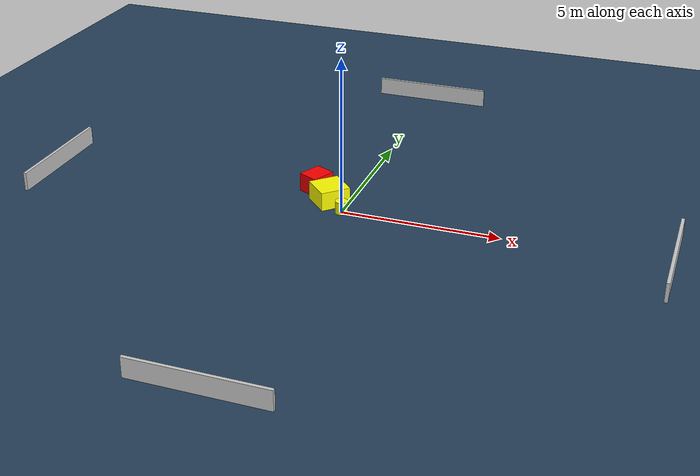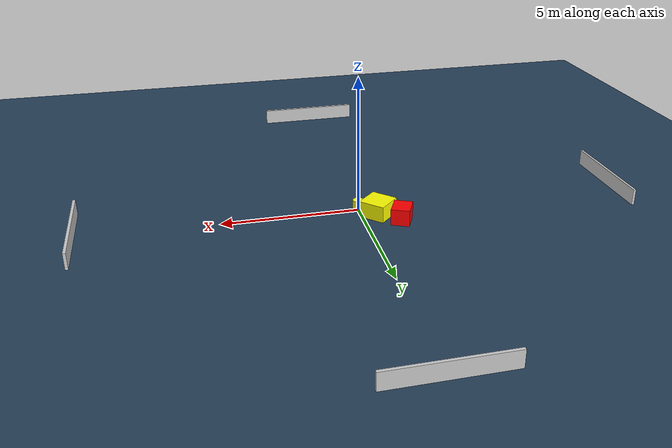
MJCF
<?xml version="1.0" ?>
<mujoco model="generated_environment">
  <option timestep="0.01" integrator="RK4" cone="elliptic"/>
  <default>
    <geom density="1"/>
  </default>
  <asset>
    <texture builtin="gradient" height="3072" name="skybox" rgb1="0.3 0.5 0.7" rgb2="0 0 0" type="skybox" width="512"/>
    <texture builtin="checker" height="300" name="groundplane" rgb1="0.2 0.3 0.4" rgb2="0.1 0.2 0.3" type="2d" width="300"/>
    <material name="groundplane" reflectance="0.2" texrepeat="5 5" texture="groundplane"/>
  </asset>
  <worldbody>
    <light dir="0 0 -1" directional="true" pos="0 0 1.5"/>
    <geom condim="3" friction="0.5 0.005 0.001" material="groundplane" name="floor" pos="0 0 0" size="0 0 0.05" type="plane"/>
    <body name="walls">
      <geom name="wall_1" condim="4" pos="-10.0 0.0 0.3" rgba="0.800000011920929 0.800000011920929 0.800000011920929 1.0" size="0.05 2.0 0.3" type="box"/>
      <geom name="wall_2" condim="4" pos="10.0 0.0 0.3" rgba="0.800000011920929 0.800000011920929 0.800000011920929 1.0" size="0.05 2.0 0.3" type="box"/>
      <geom name="wall_3" condim="4" pos="0.0 -10.0 0.3" rgba="0.800000011920929 0.800000011920929 0.800000011920929 1.0" size="2.0 0.05 0.3" type="box"/>
      <geom name="wall_4" condim="4" pos="0.0 10.0 0.3" rgba="0.800000011920929 0.800000011920929 0.800000011920929 1.0" size="2.0 0.05 0.3" type="box"/>
    </body>
    <body name="robot">
      <joint name="joint_x" type="slide" pos="0 0 0" axis="1 0 0"/>
      <joint name="joint_y" type="slide" pos="0 0 0" axis="0 1 0"/>
      <geom name="robot" type="cylinder" pos="0.0 0.0 0.2" size="0.2 0.2 0.0" mass="5.0" friction="1.0 0.005 0.0001" condim="4" rgba="1.0 1.0 0.0 1.0"/>
    </body>
    <body name="obstacle_1_movable">
      <geom name="obstacle_1_movable" condim="4" pos="-0.5955669709957887 0.5564826287982841 0.3" euler="0 0 44.56029992350678" friction="0.0 0.005 0.001" rgba="1.0 1.0 0.0 1.0" size="0.4857656111346369 0.49006270741028907 0.3" type="box" mass="0.1"/>
      <joint type="free"/>
    </body>
    <body name="obstacle_2_static">
      <geom name="obstacle_2_static" condim="4" pos="-1.292792486676165 1.2320430469824548 0.3" euler="0 0 334.8516726758841" friction="0.0 0.005 0.001" rgba="1.0 0.0 0.0 1.0" size="0.3359979886935809 0.4030938716033039 0.3" type="box"/>
    </body>
  </worldbody>
  <actuator>
    <motor name="actuator_x" joint="joint_x" gear="1" ctrlrange="-1 1"/>
    <motor name="actuator_y" joint="joint_y" gear="1" ctrlrange="-1 1"/>
  </actuator>
</mujoco>
